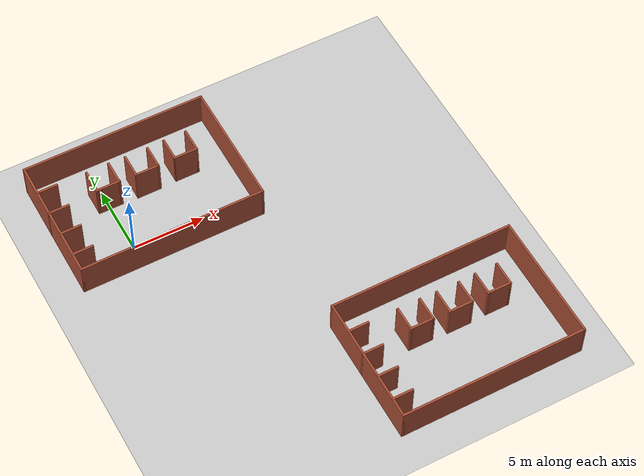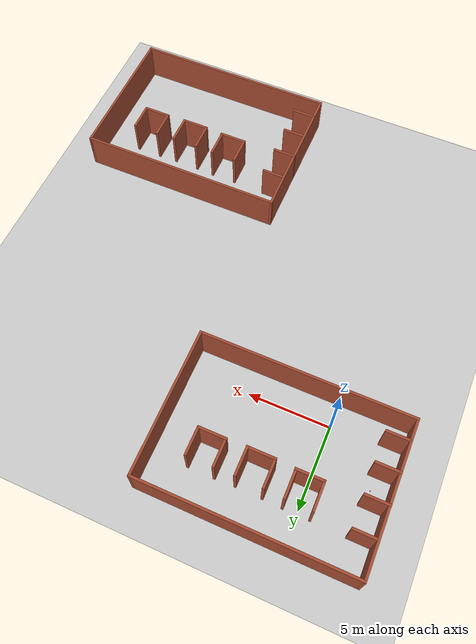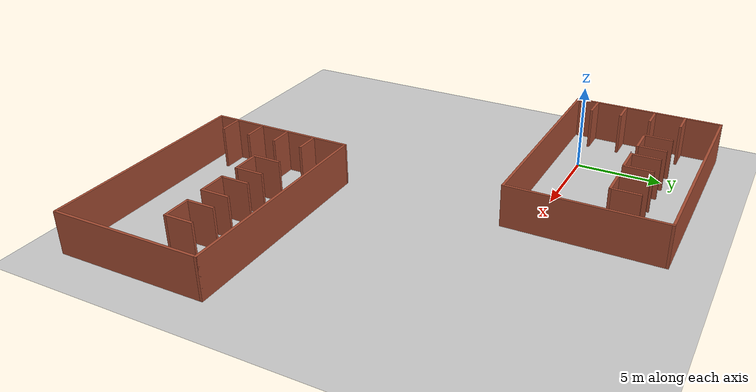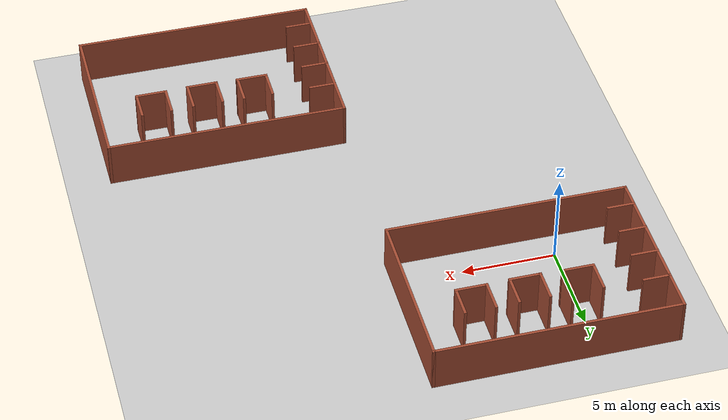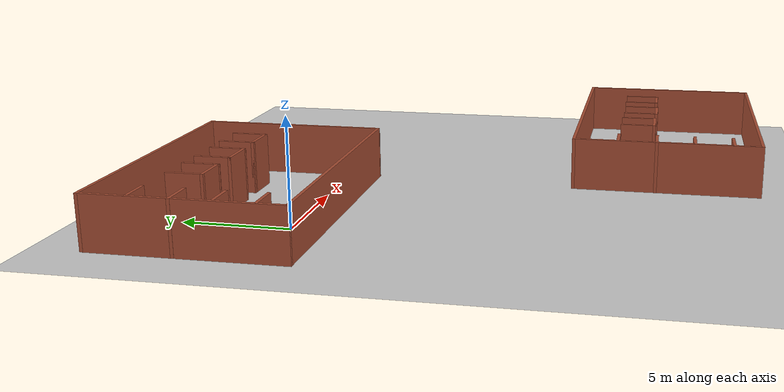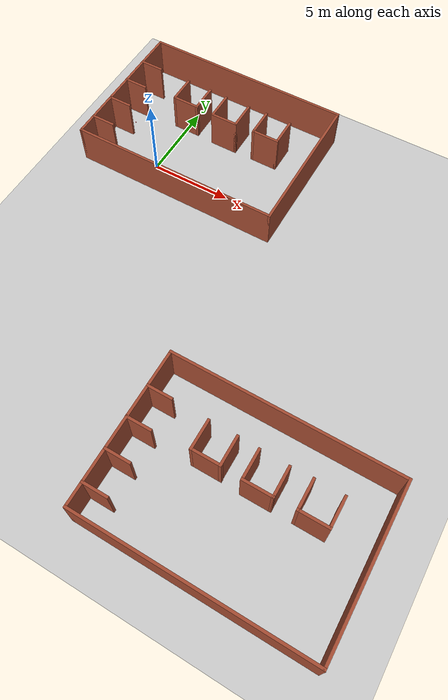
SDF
<sdf version="1.7">
 <world name="default">
  <model name="ground_plane">
   <static>1</static>
   <link name="link">
    <collision name="collision">
     <geometry><plane><normal>0 0 1</normal><size>100 100</size></plane></geometry>
     <surface>
      <contact><collide_bitmask>65535</collide_bitmask></contact>
      <friction><ode><mu>100</mu><mu2>50</mu2></ode></friction>
     </surface>
    </collision>
    <visual name="visual">
     <cast_shadows>0</cast_shadows>
     <geometry><plane><normal>0 0 1</normal><size>100 100</size></plane></geometry>
     <material>
      <script><uri>file://media/materials/scripts/gazebo.material</uri><name>Gazebo/Grey</name></script>
     </material>
    </visual>
   </link>
  </model>
  <light name="sun" type="directional">
   <pose>0 0 10 0 -0 0</pose>
   <diffuse>0.8 0.8 0.8 1</diffuse>
   <specular>0.2 0.2 0.2 1</specular>
   <attenuation>
    <range>1000</range>
    <constant>0.9</constant>
    <linear>0.01</linear>
    <quadratic>0.001</quadratic>
   </attenuation>
   <direction>-0.5 0.1 -0.9</direction>
   <spot><inner_angle>0</inner_angle><outer_angle>0</outer_angle><falloff>0</falloff></spot>
  </light>
  <scene><shadows>0</shadows><ambient>0.4 0.4 0.4 1</ambient><background>0.7 0.7 0.7 1</background></scene>
  <physics type="ode">
   <real_time_update_rate>1000</real_time_update_rate>
   <max_step_size>0.001</max_step_size>
   <real_time_factor>1</real_time_factor>
   <ode>
    <solver>
     <type>quick</type>
     <iters>150</iters>
     <precon_iters>0</precon_iters>
     <sor>1.4</sor>
     <use_dynamic_moi_rescaling>1</use_dynamic_moi_rescaling>
    </solver>
    <constraints>
     <cfm>1e-05</cfm>
     <erp>0.2</erp>
     <contact_max_correcting_vel>2000</contact_max_correcting_vel>
     <contact_surface_layer>0.01</contact_surface_layer>
    </constraints>
   </ode>
  </physics>
  <gravity>0 0 -9.8</gravity>
  <magnetic_field>6e-06 2.3e-05 -4.2e-05</magnetic_field>
  <atmosphere type="adiabatic"/>
  <audio><device>default</device></audio>
  <spherical_coordinates>
   <surface_model>EARTH_WGS84</surface_model>
   <latitude_deg>0</latitude_deg>
   <longitude_deg>0</longitude_deg>
   <elevation>0</elevation>
   <heading_deg>0</heading_deg>
  </spherical_coordinates>
  <model name="stockroom_3">
   <pose>14.763 -15.7871 0 0 -0 0</pose>
   <link name="Wall_0">
    <collision name="Wall_0_Collision">
     <geometry><box><size>9 0.15 2.5</size></box></geometry>
     <pose>0 0 1.25 0 -0 0</pose>
    </collision>
    <visual name="Wall_0_Visual">
     <pose>0 0 1.25 0 -0 0</pose>
     <geometry><box><size>9 0.15 2.5</size></box></geometry>
     <material>
      <script><uri>file://media/materials/scripts/gazebo.material</uri><name>Gazebo/Bricks</name></script>
      <ambient>1 1 1 1</ambient>
     </material>
     <meta><layer>0</layer></meta>
    </visual>
    <pose>-6.42294 -0 0 0 -0 -1.5708</pose>
   </link>
   <link name="Wall_11">
    <collision name="Wall_11_Collision">
     <geometry><box><size>1.5 0.15 2.5</size></box></geometry>
     <pose>0 0 1.25 0 -0 0</pose>
    </collision>
    <visual name="Wall_11_Visual">
     <pose>0 0 1.25 0 -0 0</pose>
     <geometry><box><size>1.5 0.15 2.5</size></box></geometry>
     <material>
      <script><uri>file://media/materials/scripts/gazebo.material</uri><name>Gazebo/Bricks</name></script>
      <ambient>1 1 1 1</ambient>
     </material>
     <meta><layer>0</layer></meta>
    </visual>
    <pose>-5.75206 0.483615 0 0 -0 0</pose>
   </link>
   <link name="Wall_14">
    <collision name="Wall_14_Collision">
     <geometry><box><size>1.5 0.15 2.5</size></box></geometry>
     <pose>0 0 1.25 0 -0 0</pose>
    </collision>
    <visual name="Wall_14_Visual">
     <pose>0 0 1.25 0 -0 0</pose>
     <geometry><box><size>1.5 0.15 2.5</size></box></geometry>
     <material>
      <script><uri>file://media/materials/scripts/gazebo.material</uri><name>Gazebo/Bricks</name></script>
      <ambient>1 1 1 1</ambient>
     </material>
     <meta><layer>0</layer></meta>
    </visual>
    <pose>-5.73457 -1.31611 0 0 -0 0</pose>
   </link>
   <link name="Wall_16">
    <collision name="Wall_16_Collision">
     <geometry><box><size>1.5 0.15 2.5</size></box></geometry>
     <pose>0 0 1.25 0 -0 0</pose>
    </collision>
    <visual name="Wall_16_Visual">
     <pose>0 0 1.25 0 -0 0</pose>
     <geometry><box><size>1.5 0.15 2.5</size></box></geometry>
     <material>
      <script><uri>file://media/materials/scripts/gazebo.material</uri><name>Gazebo/Bricks</name></script>
      <ambient>1 1 1 1</ambient>
     </material>
     <meta><layer>0</layer></meta>
    </visual>
    <pose>-5.73384 -3.13205 0 0 -0 0</pose>
   </link>
   <link name="Wall_18">
    <collision name="Wall_18_Collision">
     <geometry><box><size>1.75 0.15 2.5</size></box></geometry>
     <pose>0 0 1.25 0 -0 0</pose>
    </collision>
    <visual name="Wall_18_Visual">
     <pose>0 0 1.25 0 -0 0</pose>
     <geometry><box><size>1.75 0.15 2.5</size></box></geometry>
     <material>
      <script><uri>file://media/materials/scripts/gazebo.material</uri><name>Gazebo/Bricks</name></script>
      <ambient>1 1 1 1</ambient>
     </material>
     <meta><layer>0</layer></meta>
    </visual>
    <pose>4.21697 1.46105 0 0 -0 -1.5708</pose>
   </link>
   <link name="Wall_2">
    <collision name="Wall_2_Collision">
     <geometry><box><size>13 0.15 2.5</size></box></geometry>
     <pose>0 0 1.25 0 -0 0</pose>
    </collision>
    <visual name="Wall_2_Visual">
     <pose>0 0 1.25 0 -0 0</pose>
     <geometry><box><size>13 0.15 2.5</size></box></geometry>
     <material>
      <script><uri>file://media/materials/scripts/gazebo.material</uri><name>Gazebo/Bricks</name></script>
      <ambient>1 1 1 1</ambient>
     </material>
     <meta><layer>0</layer></meta>
    </visual>
    <pose>0.002063 -4.425 0 0 -0 0</pose>
   </link>
   <link name="Wall_20">
    <collision name="Wall_20_Collision">
     <geometry><box><size>1.75 0.15 2.5</size></box></geometry>
     <pose>0 0 1.25 0 -0 0</pose>
    </collision>
    <visual name="Wall_20_Visual">
     <pose>0 0 1.25 0 -0 0</pose>
     <geometry><box><size>1.75 0.15 2.5</size></box></geometry>
     <material>
      <script><uri>file://media/materials/scripts/gazebo.material</uri><name>Gazebo/Bricks</name></script>
      <ambient>1 1 1 1</ambient>
     </material>
     <meta><layer>0</layer></meta>
    </visual>
    <pose>3.41697 0.661049 0 0 -0 3.14159</pose>
   </link>
   <link name="Wall_21">
    <collision name="Wall_21_Collision">
     <geometry><box><size>1.75 0.15 2.5</size></box></geometry>
     <pose>0 0 1.25 0 -0 0</pose>
    </collision>
    <visual name="Wall_21_Visual">
     <pose>0 0 1.25 0 -0 0</pose>
     <geometry><box><size>1.75 0.15 2.5</size></box></geometry>
     <material>
      <script><uri>file://media/materials/scripts/gazebo.material</uri><name>Gazebo/Bricks</name></script>
      <ambient>1 1 1 1</ambient>
     </material>
     <meta><layer>0</layer></meta>
    </visual>
    <pose>2.61697 1.46105 0 0 -0 1.5708</pose>
   </link>
   <link name="Wall_23">
    <collision name="Wall_23_Collision">
     <geometry><box><size>1.75 0.15 2.5</size></box></geometry>
     <pose>0 0 1.25 0 -0 0</pose>
    </collision>
    <visual name="Wall_23_Visual">
     <pose>0 0 1.25 0 -0 0</pose>
     <geometry><box><size>1.75 0.15 2.5</size></box></geometry>
     <material>
      <script><uri>file://media/materials/scripts/gazebo.material</uri><name>Gazebo/Bricks</name></script>
      <ambient>1 1 1 1</ambient>
     </material>
     <meta><layer>0</layer></meta>
    </visual>
    <pose>0.602983 0.609893 0 0 -0 3.14159</pose>
   </link>
   <link name="Wall_30">
    <collision name="Wall_30_Collision">
     <geometry><box><size>1.75 0.15 2.5</size></box></geometry>
     <pose>0 0 1.25 0 -0 0</pose>
    </collision>
    <visual name="Wall_30_Visual">
     <pose>0 0 1.25 0 -0 0</pose>
     <geometry><box><size>1.75 0.15 2.5</size></box></geometry>
     <material>
      <script><uri>file://media/materials/scripts/gazebo.material</uri><name>Gazebo/Bricks</name></script>
      <ambient>1 1 1 1</ambient>
     </material>
     <meta><layer>0</layer></meta>
    </visual>
    <pose>-0.197017 1.43001 0 0 -0 1.5708</pose>
   </link>
   <link name="Wall_32">
    <collision name="Wall_32_Collision">
     <geometry><box><size>1.75 0.15 2.5</size></box></geometry>
     <pose>0 0 1.25 0 -0 0</pose>
    </collision>
    <visual name="Wall_32_Visual">
     <pose>0 0 1.25 0 -0 0</pose>
     <geometry><box><size>1.75 0.15 2.5</size></box></geometry>
     <material>
      <script><uri>file://media/materials/scripts/gazebo.material</uri><name>Gazebo/Bricks</name></script>
      <ambient>1 1 1 1</ambient>
     </material>
     <meta><layer>0</layer></meta>
    </visual>
    <pose>-1.37794 1.47023 0 0 -0 1.5708</pose>
   </link>
   <link name="Wall_34">
    <collision name="Wall_34_Collision">
     <geometry><box><size>1.75 0.15 2.5</size></box></geometry>
     <pose>0 0 1.25 0 -0 0</pose>
    </collision>
    <visual name="Wall_34_Visual">
     <pose>0 0 1.25 0 -0 0</pose>
     <geometry><box><size>1.75 0.15 2.5</size></box></geometry>
     <material>
      <script><uri>file://media/materials/scripts/gazebo.material</uri><name>Gazebo/Bricks</name></script>
      <ambient>1 1 1 1</ambient>
     </material>
     <meta><layer>0</layer></meta>
    </visual>
    <pose>-2.15782 0.670234 0 0 -0 3.14159</pose>
   </link>
   <link name="Wall_37">
    <collision name="Wall_37_Collision">
     <geometry><box><size>1.75 0.15 2.5</size></box></geometry>
     <pose>0 0 1.25 0 -0 0</pose>
    </collision>
    <visual name="Wall_37_Visual">
     <pose>0 0 1.25 0 -0 0</pose>
     <geometry><box><size>1.75 0.15 2.5</size></box></geometry>
     <material>
      <script><uri>file://media/materials/scripts/gazebo.material</uri><name>Gazebo/Bricks</name></script>
      <ambient>1 1 1 1</ambient>
     </material>
     <meta><layer>0</layer></meta>
    </visual>
    <pose>1.40298 1.40989 0 0 -0 1.5708</pose>
   </link>
   <link name="Wall_39">
    <collision name="Wall_39_Collision">
     <geometry><box><size>1.75 0.15 2.5</size></box></geometry>
     <pose>0 0 1.25 0 -0 0</pose>
    </collision>
    <visual name="Wall_39_Visual">
     <pose>0 0 1.25 0 -0 0</pose>
     <geometry><box><size>1.75 0.15 2.5</size></box></geometry>
     <material>
      <script><uri>file://media/materials/scripts/gazebo.material</uri><name>Gazebo/Bricks</name></script>
      <ambient>1 1 1 1</ambient>
     </material>
     <meta><layer>0</layer></meta>
    </visual>
    <pose>-2.95782 1.47023 0 0 -0 1.5708</pose>
   </link>
   <link name="Wall_4">
    <collision name="Wall_4_Collision">
     <geometry><box><size>9 0.15 2.5</size></box></geometry>
     <pose>0 0 1.25 0 -0 0</pose>
    </collision>
    <visual name="Wall_4_Visual">
     <pose>0 0 1.25 0 -0 0</pose>
     <geometry><box><size>9 0.15 2.5</size></box></geometry>
     <material>
      <script><uri>file://media/materials/scripts/gazebo.material</uri><name>Gazebo/Bricks</name></script>
      <ambient>1 1 1 1</ambient>
     </material>
     <meta><layer>0</layer></meta>
    </visual>
    <pose>6.42706 -0 0 0 -0 1.5708</pose>
   </link>
   <link name="Wall_7">
    <collision name="Wall_7_Collision">
     <geometry><box><size>13 0.15 2.5</size></box></geometry>
     <pose>0 0 1.25 0 -0 0</pose>
    </collision>
    <visual name="Wall_7_Visual">
     <pose>0 0 1.25 0 -0 0</pose>
     <geometry><box><size>13 0.15 2.5</size></box></geometry>
     <material>
      <script><uri>file://media/materials/scripts/gazebo.material</uri><name>Gazebo/Bricks</name></script>
      <ambient>1 1 1 1</ambient>
     </material>
     <meta><layer>0</layer></meta>
    </visual>
    <pose>0.002063 4.425 0 0 -0 0</pose>
   </link>
   <link name="Wall_9">
    <collision name="Wall_9_Collision">
     <geometry><box><size>1.5 0.15 2.5</size></box></geometry>
     <pose>0 0 1.25 0 -0 0</pose>
    </collision>
    <visual name="Wall_9_Visual">
     <pose>0 0 1.25 0 -0 0</pose>
     <geometry><box><size>1.5 0.15 2.5</size></box></geometry>
     <material>
      <script><uri>file://media/materials/scripts/gazebo.material</uri><name>Gazebo/Bricks</name></script>
      <ambient>1 1 1 1</ambient>
     </material>
     <meta><layer>0</layer></meta>
    </visual>
    <pose>-5.74368 2.3206 0 0 -0 0</pose>
   </link>
   <static>1</static>
  </model>
  <model name="stockroom_3_0">
   <pose>2.21325 2.91259 0 0 -0 0</pose>
   <link name="Wall_0">
    <collision name="Wall_0_Collision">
     <geometry><box><size>9 0.15 2.5</size></box></geometry>
     <pose>0 0 1.25 0 -0 0</pose>
    </collision>
    <visual name="Wall_0_Visual">
     <pose>0 0 1.25 0 -0 0</pose>
     <geometry><box><size>9 0.15 2.5</size></box></geometry>
     <material>
      <script><uri>file://media/materials/scripts/gazebo.material</uri><name>Gazebo/Bricks</name></script>
      <ambient>1 1 1 1</ambient>
     </material>
     <meta><layer>0</layer></meta>
    </visual>
    <pose>-6.42294 -0 0 0 -0 -1.5708</pose>
   </link>
   <link name="Wall_11">
    <collision name="Wall_11_Collision">
     <geometry><box><size>1.5 0.15 2.5</size></box></geometry>
     <pose>0 0 1.25 0 -0 0</pose>
    </collision>
    <visual name="Wall_11_Visual">
     <pose>0 0 1.25 0 -0 0</pose>
     <geometry><box><size>1.5 0.15 2.5</size></box></geometry>
     <material>
      <script><uri>file://media/materials/scripts/gazebo.material</uri><name>Gazebo/Bricks</name></script>
      <ambient>1 1 1 1</ambient>
     </material>
     <meta><layer>0</layer></meta>
    </visual>
    <pose>-5.75206 0.483615 0 0 -0 0</pose>
   </link>
   <link name="Wall_14">
    <collision name="Wall_14_Collision">
     <geometry><box><size>1.5 0.15 2.5</size></box></geometry>
     <pose>0 0 1.25 0 -0 0</pose>
    </collision>
    <visual name="Wall_14_Visual">
     <pose>0 0 1.25 0 -0 0</pose>
     <geometry><box><size>1.5 0.15 2.5</size></box></geometry>
     <material>
      <script><uri>file://media/materials/scripts/gazebo.material</uri><name>Gazebo/Bricks</name></script>
      <ambient>1 1 1 1</ambient>
     </material>
     <meta><layer>0</layer></meta>
    </visual>
    <pose>-5.73457 -1.31611 0 0 -0 0</pose>
   </link>
   <link name="Wall_16">
    <collision name="Wall_16_Collision">
     <geometry><box><size>1.5 0.15 2.5</size></box></geometry>
     <pose>0 0 1.25 0 -0 0</pose>
    </collision>
    <visual name="Wall_16_Visual">
     <pose>0 0 1.25 0 -0 0</pose>
     <geometry><box><size>1.5 0.15 2.5</size></box></geometry>
     <material>
      <script><uri>file://media/materials/scripts/gazebo.material</uri><name>Gazebo/Bricks</name></script>
      <ambient>1 1 1 1</ambient>
     </material>
     <meta><layer>0</layer></meta>
    </visual>
    <pose>-5.73384 -3.13205 0 0 -0 0</pose>
   </link>
   <link name="Wall_18">
    <collision name="Wall_18_Collision">
     <geometry><box><size>1.75 0.15 2.5</size></box></geometry>
     <pose>0 0 1.25 0 -0 0</pose>
    </collision>
    <visual name="Wall_18_Visual">
     <pose>0 0 1.25 0 -0 0</pose>
     <geometry><box><size>1.75 0.15 2.5</size></box></geometry>
     <material>
      <script><uri>file://media/materials/scripts/gazebo.material</uri><name>Gazebo/Bricks</name></script>
      <ambient>1 1 1 1</ambient>
     </material>
     <meta><layer>0</layer></meta>
    </visual>
    <pose>4.21697 1.46105 0 0 -0 -1.5708</pose>
   </link>
   <link name="Wall_2">
    <collision name="Wall_2_Collision">
     <geometry><box><size>13 0.15 2.5</size></box></geometry>
     <pose>0 0 1.25 0 -0 0</pose>
    </collision>
    <visual name="Wall_2_Visual">
     <pose>0 0 1.25 0 -0 0</pose>
     <geometry><box><size>13 0.15 2.5</size></box></geometry>
     <material>
      <script><uri>file://media/materials/scripts/gazebo.material</uri><name>Gazebo/Bricks</name></script>
      <ambient>1 1 1 1</ambient>
     </material>
     <meta><layer>0</layer></meta>
    </visual>
    <pose>0.002063 -4.425 0 0 -0 0</pose>
   </link>
   <link name="Wall_20">
    <collision name="Wall_20_Collision">
     <geometry><box><size>1.75 0.15 2.5</size></box></geometry>
     <pose>0 0 1.25 0 -0 0</pose>
    </collision>
    <visual name="Wall_20_Visual">
     <pose>0 0 1.25 0 -0 0</pose>
     <geometry><box><size>1.75 0.15 2.5</size></box></geometry>
     <material>
      <script><uri>file://media/materials/scripts/gazebo.material</uri><name>Gazebo/Bricks</name></script>
      <ambient>1 1 1 1</ambient>
     </material>
     <meta><layer>0</layer></meta>
    </visual>
    <pose>3.41697 0.661049 0 0 -0 3.14159</pose>
   </link>
   <link name="Wall_21">
    <collision name="Wall_21_Collision">
     <geometry><box><size>1.75 0.15 2.5</size></box></geometry>
     <pose>0 0 1.25 0 -0 0</pose>
    </collision>
    <visual name="Wall_21_Visual">
     <pose>0 0 1.25 0 -0 0</pose>
     <geometry><box><size>1.75 0.15 2.5</size></box></geometry>
     <material>
      <script><uri>file://media/materials/scripts/gazebo.material</uri><name>Gazebo/Bricks</name></script>
      <ambient>1 1 1 1</ambient>
     </material>
     <meta><layer>0</layer></meta>
    </visual>
    <pose>2.61697 1.46105 0 0 -0 1.5708</pose>
   </link>
   <link name="Wall_23">
    <collision name="Wall_23_Collision">
     <geometry><box><size>1.75 0.15 2.5</size></box></geometry>
     <pose>0 0 1.25 0 -0 0</pose>
    </collision>
    <visual name="Wall_23_Visual">
     <pose>0 0 1.25 0 -0 0</pose>
     <geometry><box><size>1.75 0.15 2.5</size></box></geometry>
     <material>
      <script><uri>file://media/materials/scripts/gazebo.material</uri><name>Gazebo/Bricks</name></script>
      <ambient>1 1 1 1</ambient>
     </material>
     <meta><layer>0</layer></meta>
    </visual>
    <pose>0.602983 0.609893 0 0 -0 3.14159</pose>
   </link>
   <link name="Wall_30">
    <collision name="Wall_30_Collision">
     <geometry><box><size>1.75 0.15 2.5</size></box></geometry>
     <pose>0 0 1.25 0 -0 0</pose>
    </collision>
    <visual name="Wall_30_Visual">
     <pose>0 0 1.25 0 -0 0</pose>
     <geometry><box><size>1.75 0.15 2.5</size></box></geometry>
     <material>
      <script><uri>file://media/materials/scripts/gazebo.material</uri><name>Gazebo/Bricks</name></script>
      <ambient>1 1 1 1</ambient>
     </material>
     <meta><layer>0</layer></meta>
    </visual>
    <pose>-0.197017 1.43001 0 0 -0 1.5708</pose>
   </link>
   <link name="Wall_32">
    <collision name="Wall_32_Collision">
     <geometry><box><size>1.75 0.15 2.5</size></box></geometry>
     <pose>0 0 1.25 0 -0 0</pose>
    </collision>
    <visual name="Wall_32_Visual">
     <pose>0 0 1.25 0 -0 0</pose>
     <geometry><box><size>1.75 0.15 2.5</size></box></geometry>
     <material>
      <script><uri>file://media/materials/scripts/gazebo.material</uri><name>Gazebo/Bricks</name></script>
      <ambient>1 1 1 1</ambient>
     </material>
     <meta><layer>0</layer></meta>
    </visual>
    <pose>-1.37794 1.47023 0 0 -0 1.5708</pose>
   </link>
   <link name="Wall_34">
    <collision name="Wall_34_Collision">
     <geometry><box><size>1.75 0.15 2.5</size></box></geometry>
     <pose>0 0 1.25 0 -0 0</pose>
    </collision>
    <visual name="Wall_34_Visual">
     <pose>0 0 1.25 0 -0 0</pose>
     <geometry><box><size>1.75 0.15 2.5</size></box></geometry>
     <material>
      <script><uri>file://media/materials/scripts/gazebo.material</uri><name>Gazebo/Bricks</name></script>
      <ambient>1 1 1 1</ambient>
     </material>
     <meta><layer>0</layer></meta>
    </visual>
    <pose>-2.15782 0.670234 0 0 -0 3.14159</pose>
   </link>
   <link name="Wall_37">
    <collision name="Wall_37_Collision">
     <geometry><box><size>1.75 0.15 2.5</size></box></geometry>
     <pose>0 0 1.25 0 -0 0</pose>
    </collision>
    <visual name="Wall_37_Visual">
     <pose>0 0 1.25 0 -0 0</pose>
     <geometry><box><size>1.75 0.15 2.5</size></box></geometry>
     <material>
      <script><uri>file://media/materials/scripts/gazebo.material</uri><name>Gazebo/Bricks</name></script>
      <ambient>1 1 1 1</ambient>
     </material>
     <meta><layer>0</layer></meta>
    </visual>
    <pose>1.40298 1.40989 0 0 -0 1.5708</pose>
   </link>
   <link name="Wall_39">
    <collision name="Wall_39_Collision">
     <geometry><box><size>1.75 0.15 2.5</size></box></geometry>
     <pose>0 0 1.25 0 -0 0</pose>
    </collision>
    <visual name="Wall_39_Visual">
     <pose>0 0 1.25 0 -0 0</pose>
     <geometry><box><size>1.75 0.15 2.5</size></box></geometry>
     <material>
      <script><uri>file://media/materials/scripts/gazebo.material</uri><name>Gazebo/Bricks</name></script>
      <ambient>1 1 1 1</ambient>
     </material>
     <meta><layer>0</layer></meta>
    </visual>
    <pose>-2.95782 1.47023 0 0 -0 1.5708</pose>
   </link>
   <link name="Wall_4">
    <collision name="Wall_4_Collision">
     <geometry><box><size>9 0.15 2.5</size></box></geometry>
     <pose>0 0 1.25 0 -0 0</pose>
    </collision>
    <visual name="Wall_4_Visual">
     <pose>0 0 1.25 0 -0 0</pose>
     <geometry><box><size>9 0.15 2.5</size></box></geometry>
     <material>
      <script><uri>file://media/materials/scripts/gazebo.material</uri><name>Gazebo/Bricks</name></script>
      <ambient>1 1 1 1</ambient>
     </material>
     <meta><layer>0</layer></meta>
    </visual>
    <pose>6.42706 -0 0 0 -0 1.5708</pose>
   </link>
   <link name="Wall_7">
    <collision name="Wall_7_Collision">
     <geometry><box><size>13 0.15 2.5</size></box></geometry>
     <pose>0 0 1.25 0 -0 0</pose>
    </collision>
    <visual name="Wall_7_Visual">
     <pose>0 0 1.25 0 -0 0</pose>
     <geometry><box><size>13 0.15 2.5</size></box></geometry>
     <material>
      <script><uri>file://media/materials/scripts/gazebo.material</uri><name>Gazebo/Bricks</name></script>
      <ambient>1 1 1 1</ambient>
     </material>
     <meta><layer>0</layer></meta>
    </visual>
    <pose>0.002063 4.425 0 0 -0 0</pose>
   </link>
   <link name="Wall_9">
    <collision name="Wall_9_Collision">
     <geometry><box><size>1.5 0.15 2.5</size></box></geometry>
     <pose>0 0 1.25 0 -0 0</pose>
    </collision>
    <visual name="Wall_9_Visual">
     <pose>0 0 1.25 0 -0 0</pose>
     <geometry><box><size>1.5 0.15 2.5</size></box></geometry>
     <material>
      <script><uri>file://media/materials/scripts/gazebo.material</uri><name>Gazebo/Bricks</name></script>
      <ambient>1 1 1 1</ambient>
     </material>
     <meta><layer>0</layer></meta>
    </visual>
    <pose>-5.74368 2.3206 0 0 -0 0</pose>
   </link>
   <static>1</static>
  </model>
  <model name="orange_ball">
   <link name="ball">
    <inertial>
     <mass>0.03</mass>
     <inertia>
      <ixx>1.268e-05</ixx>
      <iyy>1.268e-05</iyy>
      <izz>1.268e-05</izz>
      <ixy>0</ixy>
      <ixz>0</ixz>
      <iyz>0</iyz>
     </inertia>
    </inertial>
    <visual name="visual">
     <geometry><sphere><radius>0.0325</radius></sphere></geometry>
     <material>
      <script><uri>file://media/materials/scripts/gazebo.material</uri><name>Gazebo/RedBright</name></script>
      <shader type="pixel"><normal_map>__default__</normal_map></shader>
     </material>
    </visual>
    <collision name="collision">
     <geometry><sphere><radius>0.0325</radius></sphere></geometry>
     <surface>
      <friction>
       <ode><mu>1</mu><mu2>1</mu2><fdir1>0 0 0</fdir1><slip1>0</slip1><slip2>0</slip2></ode>
       <torsional>
        <coefficient>1</coefficient>
        <patch_radius>0</patch_radius>
        <surface_radius>0</surface_radius>
        <use_patch_radius>1</use_patch_radius>
        <ode><slip>0</slip></ode>
       </torsional>
      </friction>
      <bounce><restitution_coefficient>0</restitution_coefficient><threshold>1e+06</threshold></bounce>
      <contact>
       <collide_without_contact>0</collide_without_contact>
       <collide_without_contact_bitmask>1</collide_without_contact_bitmask>
       <collide_bitmask>1</collide_bitmask>
       <ode>
        <soft_cfm>0</soft_cfm>
        <soft_erp>0.2</soft_erp>
        <kp>1e+13</kp>
        <kd>1</kd>
        <max_vel>0.01</max_vel>
        <min_depth>0</min_depth>
       </ode>
       <bullet>
        <split_impulse>1</split_impulse>
        <split_impulse_penetration_threshold>-0.01</split_impulse_penetration_threshold>
        <soft_cfm>0</soft_cfm>
        <soft_erp>0.2</soft_erp>
        <kp>1e+13</kp>
        <kd>1</kd>
       </bullet>
      </contact>
     </surface>
    </collision>
   </link>
   <static>0</static>
   <pose>-3.20309 2.45276 0.0325 0 -0 0</pose>
  </model>
 </world>
</sdf>
